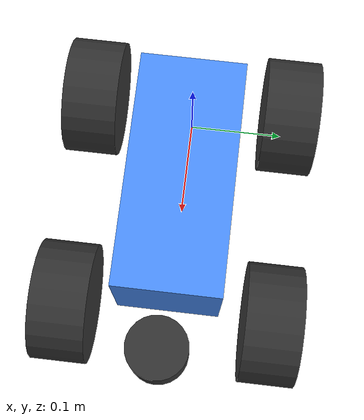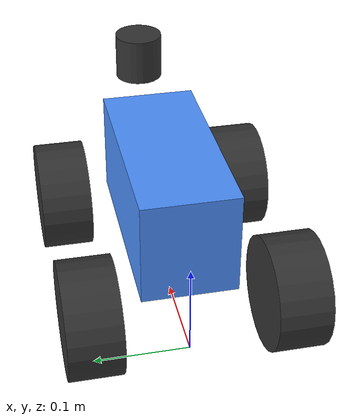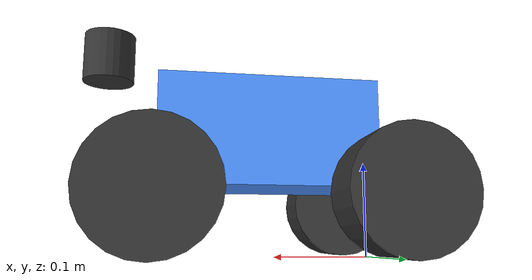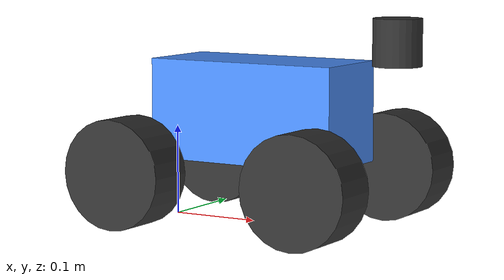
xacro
<?xml version="1.0" ?>
<!-- |    This document was autogenerated by xacro from rc-car-model.xacro             | -->
<!-- |    EDITING THIS FILE BY HAND IS NOT RECOMMENDED                                 | -->
<!-- A simple model of the rc-car for rviz -->
<!-- urdf-viz for quick viewing-->
<robot name="rc-car" xmlns:xacro="http://www.ros.org/wiki/xacro">
  <material name="black">
    <color rgba="0.2 0.2 0.2 1"/>
  </material>
  <material name="blue">
    <color rgba="0.3 0.57 1. 1"/>
  </material>

  ### base link

  <link name="base_link">
    <visual>
      <origin xyz="0.111 0 0.125"/>
      <geometry>
        <box size="0.222 0.1 0.11"/>
      </geometry>
      <material name="blue"/>
    </visual>
  </link>

  ### laser

  <joint name="base_to_laser_model" type="fixed">
    <parent link="base_link"/>
    <child link="laser_model"/>
    <origin xyz="0.275 0 0.205"/>
  </joint>
  <link name="laser_model">
    <visual>
      <geometry>
        <cylinder length="0.05" radius="0.026"/>
      </geometry>
      <material name="black"/>
    </visual>
  </link>

  ### Back left wheel

  <joint name="base_to_back_left_wheel" type="continuous">
    <parent link="base_link"/>
    <child link="back_left_wheel"/>
    <origin xyz="0 0.1025 0.06"/>
    <axis xyz="0 1 0"/>
  </joint>
  <link name="back_left_wheel">
    <visual>
      <geometry>
        <cylinder length="0.055" radius="0.06"/>
      </geometry>
      <material name="black"/>
      <origin rpy="1.57079632679 0 0"/>
    </visual>
  </link>

  ### Back right wheel

  <joint name="base_to_back_right_wheel" type="continuous">
    <parent link="base_link"/>
    <child link="back_right_wheel"/>
    <origin xyz="0 -0.1025 0.06"/>
    <axis xyz="0 1 0"/>
  </joint>
  <link name="back_right_wheel">
    <visual>
      <geometry>
        <cylinder length="0.055" radius="0.06"/>
      </geometry>
      <material name="black"/>
      <origin rpy="1.57079632679 0 0"/>
    </visual>
  </link>

  ### Front right wheel

  <joint name="base_to_front_left_hinge" type="continuous">
    <parent link="base_link"/>
    <child link="front_left_hinge"/>
    <origin xyz="0.222 0.1025 0.06"/>
    <axis xyz="0 0 1"/>
  </joint>
  <link name="front_left_hinge"/>
  <joint name="front_left_hinge_to_wheel" type="continuous">
    <parent link="front_left_hinge"/>
    <child link="front_left_wheel"/>
    <axis xyz="0 1 0"/>
    <orign xyz="0 0.0275 0"/>
  </joint>
  <link name="front_left_wheel">
    <visual>
      <geometry>
        <cylinder length="0.055" radius="0.06"/>
      </geometry>
      <material name="black"/>
      <origin rpy="1.57079632679 0 0"/>
    </visual>
  </link>

  ### Front left wheel

  <joint name="base_to_front_right_hinge" type="continuous">
    <parent link="base_link"/>
    <child link="front_right_hinge"/>
    <origin xyz="0.222 -0.075 0.06"/>
    <axis xyz="0 0 1"/>
  </joint>
  <link name="front_right_hinge"/>
  <joint name="front_right_hinge_to_wheel" type="continuous">
    <parent link="front_right_hinge"/>
    <child link="front_right_wheel"/>
    <axis xyz="0 1 0"/>
    <origin xyz="0 -0.0275 0"/>
  </joint>
  <link name="front_right_wheel">
    <visual>
      <geometry>
        <cylinder length="0.055" radius="0.06"/>
      </geometry>
      <material name="black"/>
      <origin rpy="1.57079632679 0 0"/>
    </visual>
  </link>

  ### sensor simulation
  <gazebo>
    <plugin name="imu_plugin" filename="libgazebo_ros_imu.so">
      <alwaysOn>true</alwaysOn>
      <bodyName>imu_sensor</bodyName>
      <topicName>/imu/data</topicName>
      <serviceName>imu_service</serviceName>
      <gaussianNoise>0.0</gaussianNoise>
      <updateRate>20.0</updateRate>
    </plugin>

    <plugin name="gazebo_ros_gps" filename="libhector_gazebo_ros_gps.so">
        <updateRate>4.0</updateRate>
        <bodyName>gps_sensor</bodyName>
        <frameId>gps_sensor</frameId>
        <topicName>/gps/fix</topicName>
        <velocityTopicName>/gps/fix_velocity</velocityTopicName>
        <referenceLatitude>39.78020</referenceLatitude>
        <referenceLongitude>-86.16289</referenceLongitude>
        <referenceHeading>90</referenceHeading>
        <referenceAltitude>10</referenceAltitude>
        <offset>0 0 0</offset>
        <drift>0.001 0.001 0.001</drift>
        <gaussianNoise>5.0 5.0 5.0</gaussianNoise>
        <velocityDrift>0.001 0.001 0.001</velocityDrift>
        <velocityGaussianNoise>0.5 0.5 0.5</velocityGaussianNoise>
    </plugin>
  </gazebo>

</robot>
